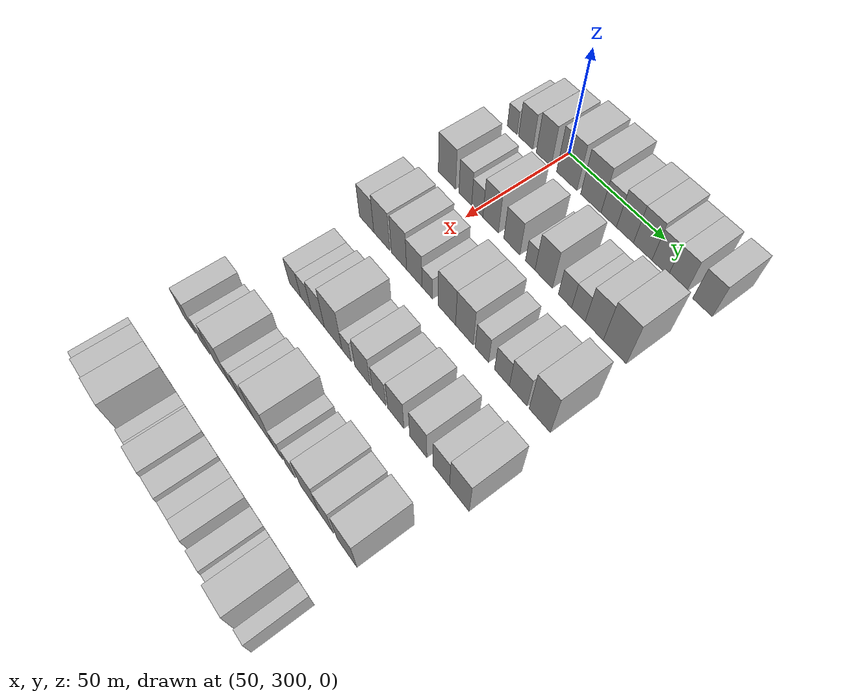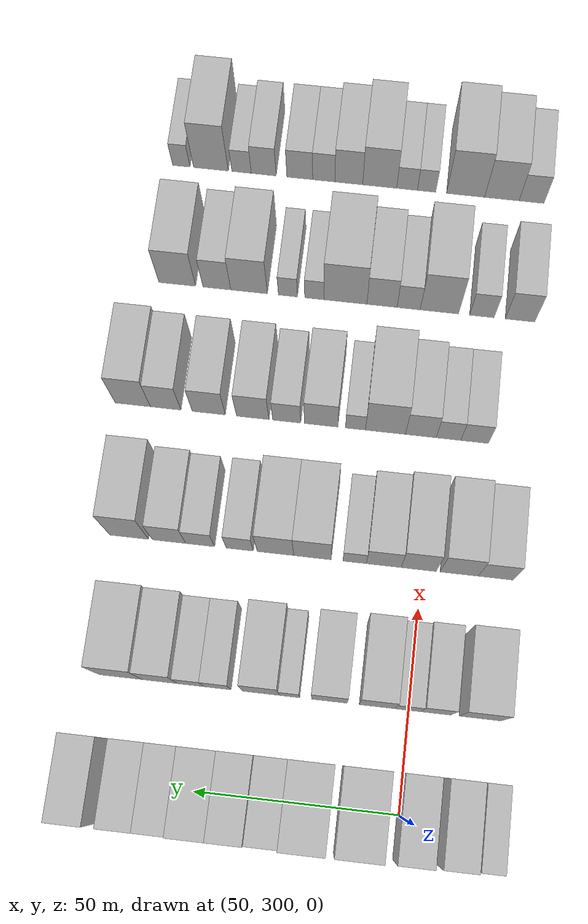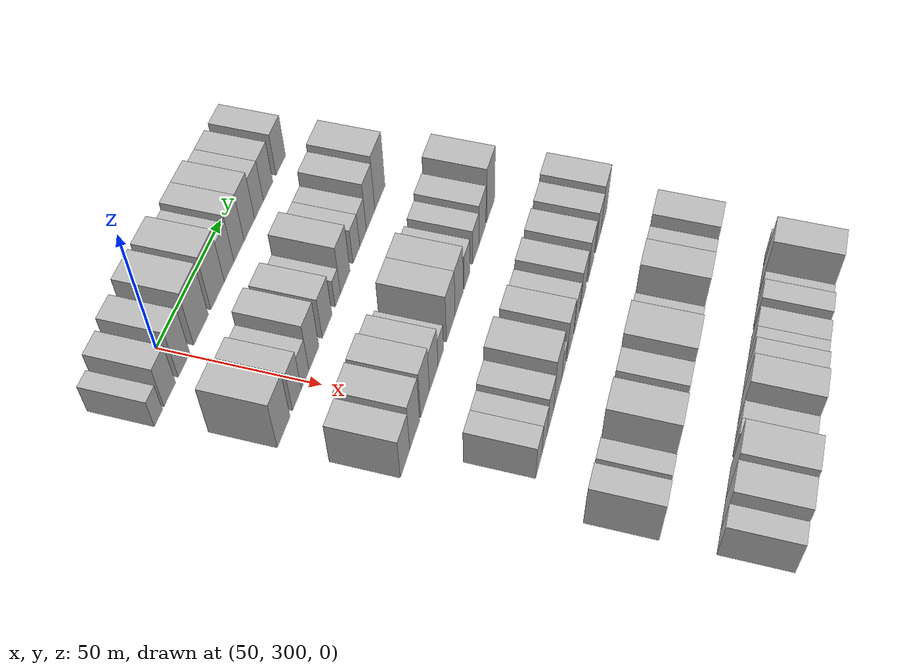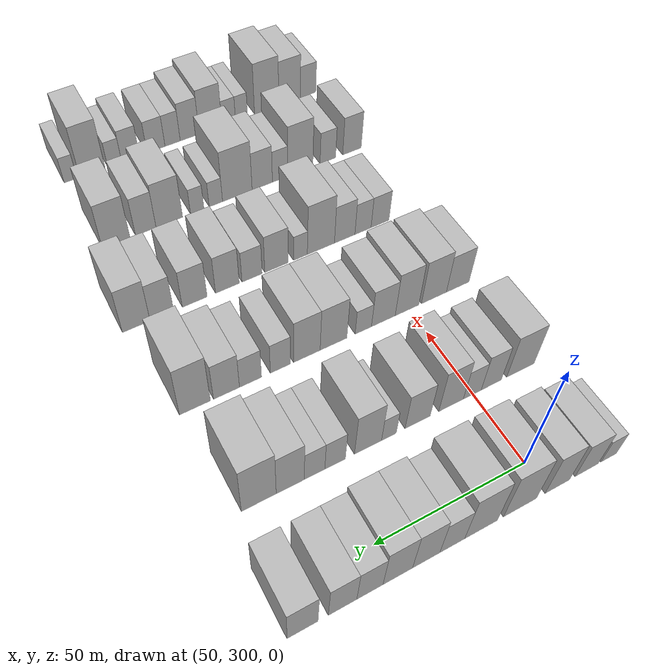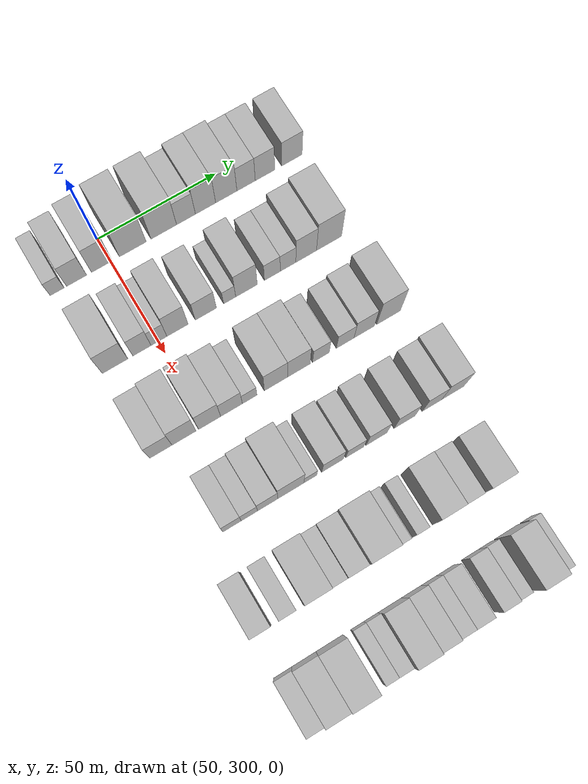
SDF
<sdf version="1.6">
 <world name="default">
  <model name="building_85">
   <static>1</static>
   <pose>50.0000 278.0711 0 0.000000 0.000000 0.000000</pose>
   <link name="link">
    <pose>0 0 6.00 0 0 0</pose>
    <collision name="collision"><geometry><box><size>20.0000 5.7061 12.0000</size></box></geometry></collision>
    <visual name="visual">
     <cast_shadows>0</cast_shadows>
     <geometry><box><size>20.0000 5.7061 12.0000</size></box></geometry>
     <material>
      <script>
       <uri>model://HANNAS_wall/materials/scripts</uri>
       <uri>model://HANNAS_wall/materials/textures</uri>
       <name>vrc/HANNAS_wall</name>
      </script>
     </material>
    </visual>
   </link>
  </model>
  <model name="building_86">
   <static>1</static>
   <pose>50.0000 286.0425 0 0.000000 0.000000 0.000000</pose>
   <link name="link">
    <pose>0 0 9.00 0 0 0</pose>
    <collision name="collision"><geometry><box><size>20.0000 8.2366 18.0000</size></box></geometry></collision>
    <visual name="visual">
     <cast_shadows>0</cast_shadows>
     <geometry><box><size>20.0000 8.2366 18.0000</size></box></geometry>
     <material>
      <script>
       <uri>model://HANNAS_wall/materials/scripts</uri>
       <uri>model://HANNAS_wall/materials/textures</uri>
       <name>vrc/HANNAS_wall</name>
      </script>
     </material>
    </visual>
   </link>
  </model>
  <model name="building_87">
   <static>1</static>
   <pose>50.0000 296.4243 0 0.000000 0.000000 0.000000</pose>
   <link name="link">
    <pose>0 0 10.50 0 0 0</pose>
    <collision name="collision"><geometry><box><size>20.0000 8.5270 21.0000</size></box></geometry></collision>
    <visual name="visual">
     <cast_shadows>0</cast_shadows>
     <geometry><box><size>20.0000 8.5270 21.0000</size></box></geometry>
     <material>
      <script>
       <uri>model://HANNAS_wall/materials/scripts</uri>
       <uri>model://HANNAS_wall/materials/textures</uri>
       <name>vrc/HANNAS_wall</name>
      </script>
     </material>
    </visual>
   </link>
  </model>
  <model name="building_88">
   <static>1</static>
   <pose>50.0000 309.2756 0 0.000000 0.000000 0.000000</pose>
   <link name="link">
    <pose>0 0 12.00 0 0 0</pose>
    <collision name="collision"><geometry><box><size>20.0000 11.1756 24.0000</size></box></geometry></collision>
    <visual name="visual">
     <cast_shadows>0</cast_shadows>
     <geometry><box><size>20.0000 11.1756 24.0000</size></box></geometry>
     <material>
      <script>
       <uri>model://HANNAS_wall/materials/scripts</uri>
       <uri>model://HANNAS_wall/materials/textures</uri>
       <name>vrc/HANNAS_wall</name>
      </script>
     </material>
    </visual>
   </link>
  </model>
  <model name="building_89">
   <static>1</static>
   <pose>50.0000 322.2462 0 0.000000 0.000000 0.000000</pose>
   <link name="link">
    <pose>0 0 12.00 0 0 0</pose>
    <collision name="collision"><geometry><box><size>20.0000 10.7656 24.0000</size></box></geometry></collision>
    <visual name="visual">
     <cast_shadows>0</cast_shadows>
     <geometry><box><size>20.0000 10.7656 24.0000</size></box></geometry>
     <material>
      <script>
       <uri>model://HANNAS_wall/materials/scripts</uri>
       <uri>model://HANNAS_wall/materials/textures</uri>
       <name>vrc/HANNAS_wall</name>
      </script>
     </material>
    </visual>
   </link>
  </model>
  <model name="building_90">
   <static>1</static>
   <pose>50.0000 331.6155 0 0.000000 0.000000 0.000000</pose>
   <link name="link">
    <pose>0 0 9.00 0 0 0</pose>
    <collision name="collision"><geometry><box><size>20.0000 7.9730 18.0000</size></box></geometry></collision>
    <visual name="visual">
     <cast_shadows>0</cast_shadows>
     <geometry><box><size>20.0000 7.9730 18.0000</size></box></geometry>
     <material>
      <script>
       <uri>model://HANNAS_wall/materials/scripts</uri>
       <uri>model://HANNAS_wall/materials/textures</uri>
       <name>vrc/HANNAS_wall</name>
      </script>
     </material>
    </visual>
   </link>
  </model>
  <model name="building_91">
   <static>1</static>
   <pose>50.0000 339.8878 0 0.000000 0.000000 0.000000</pose>
   <link name="link">
    <pose>0 0 10.50 0 0 0</pose>
    <collision name="collision"><geometry><box><size>20.0000 8.5716 21.0000</size></box></geometry></collision>
    <visual name="visual">
     <cast_shadows>0</cast_shadows>
     <geometry><box><size>20.0000 8.5716 21.0000</size></box></geometry>
     <material>
      <script>
       <uri>model://HANNAS_wall/materials/scripts</uri>
       <uri>model://HANNAS_wall/materials/textures</uri>
       <name>vrc/HANNAS_wall</name>
      </script>
     </material>
    </visual>
   </link>
  </model>
  <model name="building_92">
   <static>1</static>
   <pose>50.0000 348.7212 0 0.000000 0.000000 0.000000</pose>
   <link name="link">
    <pose>0 0 10.50 0 0 0</pose>
    <collision name="collision"><geometry><box><size>20.0000 9.0951 21.0000</size></box></geometry></collision>
    <visual name="visual">
     <cast_shadows>0</cast_shadows>
     <geometry><box><size>20.0000 9.0951 21.0000</size></box></geometry>
     <material>
      <script>
       <uri>model://HANNAS_wall/materials/scripts</uri>
       <uri>model://HANNAS_wall/materials/textures</uri>
       <name>vrc/HANNAS_wall</name>
      </script>
     </material>
    </visual>
   </link>
  </model>
  <model name="building_93">
   <static>1</static>
   <pose>50.0000 357.1975 0 0.000000 0.000000 0.000000</pose>
   <link name="link">
    <pose>0 0 9.00 0 0 0</pose>
    <collision name="collision"><geometry><box><size>20.0000 7.8576 18.0000</size></box></geometry></collision>
    <visual name="visual">
     <cast_shadows>0</cast_shadows>
     <geometry><box><size>20.0000 7.8576 18.0000</size></box></geometry>
     <material>
      <script>
       <uri>model://HANNAS_wall/materials/scripts</uri>
       <uri>model://HANNAS_wall/materials/textures</uri>
       <name>vrc/HANNAS_wall</name>
      </script>
     </material>
    </visual>
   </link>
  </model>
  <model name="building_94">
   <static>1</static>
   <pose>50.0000 365.3203 0 0.000000 0.000000 0.000000</pose>
   <link name="link">
    <pose>0 0 9.00 0 0 0</pose>
    <collision name="collision"><geometry><box><size>20.0000 8.3879 18.0000</size></box></geometry></collision>
    <visual name="visual">
     <cast_shadows>0</cast_shadows>
     <geometry><box><size>20.0000 8.3879 18.0000</size></box></geometry>
     <material>
      <script>
       <uri>model://HANNAS_wall/materials/scripts</uri>
       <uri>model://HANNAS_wall/materials/textures</uri>
       <name>vrc/HANNAS_wall</name>
      </script>
     </material>
    </visual>
   </link>
  </model>
  <model name="building_95">
   <static>1</static>
   <pose>50.0000 376.9456 0 0.000000 0.000000 0.000000</pose>
   <link name="link">
    <pose>0 0 9.00 0 0 0</pose>
    <collision name="collision"><geometry><box><size>20.0000 8.8628 18.0000</size></box></geometry></collision>
    <visual name="visual">
     <cast_shadows>0</cast_shadows>
     <geometry><box><size>20.0000 8.8628 18.0000</size></box></geometry>
     <material>
      <script>
       <uri>model://HANNAS_wall/materials/scripts</uri>
       <uri>model://HANNAS_wall/materials/textures</uri>
       <name>vrc/HANNAS_wall</name>
      </script>
     </material>
    </visual>
   </link>
  </model>
  <model name="building_210">
   <static>1</static>
   <pose>85.0000 282.5599 0 0.000000 0.000000 0.000000</pose>
   <link name="link">
    <pose>0 0 10.50 0 0 0</pose>
    <collision name="collision"><geometry><box><size>20.0000 10.3328 21.0000</size></box></geometry></collision>
    <visual name="visual">
     <cast_shadows>0</cast_shadows>
     <geometry><box><size>20.0000 10.3328 21.0000</size></box></geometry>
     <material>
      <script>
       <uri>model://HANNAS_wall/materials/scripts</uri>
       <uri>model://HANNAS_wall/materials/textures</uri>
       <name>vrc/HANNAS_wall</name>
      </script>
     </material>
    </visual>
   </link>
  </model>
  <model name="building_211">
   <static>1</static>
   <pose>85.0000 293.4377 0 0.000000 0.000000 0.000000</pose>
   <link name="link">
    <pose>0 0 9.00 0 0 0</pose>
    <collision name="collision"><geometry><box><size>20.0000 7.4226 18.0000</size></box></geometry></collision>
    <visual name="visual">
     <cast_shadows>0</cast_shadows>
     <geometry><box><size>20.0000 7.4226 18.0000</size></box></geometry>
     <material>
      <script>
       <uri>model://HANNAS_wall/materials/scripts</uri>
       <uri>model://HANNAS_wall/materials/textures</uri>
       <name>vrc/HANNAS_wall</name>
      </script>
     </material>
    </visual>
   </link>
  </model>
  <model name="building_212">
   <static>1</static>
   <pose>85.0000 300.3828 0 0.000000 0.000000 0.000000</pose>
   <link name="link">
    <pose>0 0 7.50 0 0 0</pose>
    <collision name="collision"><geometry><box><size>20.0000 6.4677 15.0000</size></box></geometry></collision>
    <visual name="visual">
     <cast_shadows>0</cast_shadows>
     <geometry><box><size>20.0000 6.4677 15.0000</size></box></geometry>
     <material>
      <script>
       <uri>model://HANNAS_wall/materials/scripts</uri>
       <uri>model://HANNAS_wall/materials/textures</uri>
       <name>vrc/HANNAS_wall</name>
      </script>
     </material>
    </visual>
   </link>
  </model>
  <model name="building_213">
   <static>1</static>
   <pose>85.0000 307.9797 0 0.000000 0.000000 0.000000</pose>
   <link name="link">
    <pose>0 0 10.50 0 0 0</pose>
    <collision name="collision"><geometry><box><size>20.0000 8.7260 21.0000</size></box></geometry></collision>
    <visual name="visual">
     <cast_shadows>0</cast_shadows>
     <geometry><box><size>20.0000 8.7260 21.0000</size></box></geometry>
     <material>
      <script>
       <uri>model://HANNAS_wall/materials/scripts</uri>
       <uri>model://HANNAS_wall/materials/textures</uri>
       <name>vrc/HANNAS_wall</name>
      </script>
     </material>
    </visual>
   </link>
  </model>
  <model name="building_214">
   <static>1</static>
   <pose>85.0000 319.7126 0 0.000000 0.000000 0.000000</pose>
   <link name="link">
    <pose>0 0 9.00 0 0 0</pose>
    <collision name="collision"><geometry><box><size>20.0000 8.7399 18.0000</size></box></geometry></collision>
    <visual name="visual">
     <cast_shadows>0</cast_shadows>
     <geometry><box><size>20.0000 8.7399 18.0000</size></box></geometry>
     <material>
      <script>
       <uri>model://HANNAS_wall/materials/scripts</uri>
       <uri>model://HANNAS_wall/materials/textures</uri>
       <name>vrc/HANNAS_wall</name>
      </script>
     </material>
    </visual>
   </link>
  </model>
  <model name="building_215">
   <static>1</static>
   <pose>85.0000 329.5873 0 0.000000 0.000000 0.000000</pose>
   <link name="link">
    <pose>0 0 6.00 0 0 0</pose>
    <collision name="collision"><geometry><box><size>20.0000 5.0094 12.0000</size></box></geometry></collision>
    <visual name="visual">
     <cast_shadows>0</cast_shadows>
     <geometry><box><size>20.0000 5.0094 12.0000</size></box></geometry>
     <material>
      <script>
       <uri>model://HANNAS_wall/materials/scripts</uri>
       <uri>model://HANNAS_wall/materials/textures</uri>
       <name>vrc/HANNAS_wall</name>
      </script>
     </material>
    </visual>
   </link>
  </model>
  <model name="building_216">
   <static>1</static>
   <pose>85.0000 336.6051 0 0.000000 0.000000 0.000000</pose>
   <link name="link">
    <pose>0 0 10.50 0 0 0</pose>
    <collision name="collision"><geometry><box><size>20.0000 9.0263 21.0000</size></box></geometry></collision>
    <visual name="visual">
     <cast_shadows>0</cast_shadows>
     <geometry><box><size>20.0000 9.0263 21.0000</size></box></geometry>
     <material>
      <script>
       <uri>model://HANNAS_wall/materials/scripts</uri>
       <uri>model://HANNAS_wall/materials/textures</uri>
       <name>vrc/HANNAS_wall</name>
      </script>
     </material>
    </visual>
   </link>
  </model>
  <model name="building_217">
   <static>1</static>
   <pose>85.0000 347.4566 0 0.000000 0.000000 0.000000</pose>
   <link name="link">
    <pose>0 0 7.50 0 0 0</pose>
    <collision name="collision"><geometry><box><size>20.0000 6.6767 15.0000</size></box></geometry></collision>
    <visual name="visual">
     <cast_shadows>0</cast_shadows>
     <geometry><box><size>20.0000 6.6767 15.0000</size></box></geometry>
     <material>
      <script>
       <uri>model://HANNAS_wall/materials/scripts</uri>
       <uri>model://HANNAS_wall/materials/textures</uri>
       <name>vrc/HANNAS_wall</name>
      </script>
     </material>
    </visual>
   </link>
  </model>
  <model name="building_218">
   <static>1</static>
   <pose>85.0000 354.0902 0 0.000000 0.000000 0.000000</pose>
   <link name="link">
    <pose>0 0 7.50 0 0 0</pose>
    <collision name="collision"><geometry><box><size>20.0000 6.5906 15.0000</size></box></geometry></collision>
    <visual name="visual">
     <cast_shadows>0</cast_shadows>
     <geometry><box><size>20.0000 6.5906 15.0000</size></box></geometry>
     <material>
      <script>
       <uri>model://HANNAS_wall/materials/scripts</uri>
       <uri>model://HANNAS_wall/materials/textures</uri>
       <name>vrc/HANNAS_wall</name>
      </script>
     </material>
    </visual>
   </link>
  </model>
  <model name="building_219">
   <static>1</static>
   <pose>85.0000 361.7844 0 0.000000 0.000000 0.000000</pose>
   <link name="link">
    <pose>0 0 10.50 0 0 0</pose>
    <collision name="collision"><geometry><box><size>20.0000 8.7977 21.0000</size></box></geometry></collision>
    <visual name="visual">
     <cast_shadows>0</cast_shadows>
     <geometry><box><size>20.0000 8.7977 21.0000</size></box></geometry>
     <material>
      <script>
       <uri>model://HANNAS_wall/materials/scripts</uri>
       <uri>model://HANNAS_wall/materials/textures</uri>
       <name>vrc/HANNAS_wall</name>
      </script>
     </material>
    </visual>
   </link>
  </model>
  <model name="building_220">
   <static>1</static>
   <pose>85.0000 371.5409 0 0.000000 0.000000 0.000000</pose>
   <link name="link">
    <pose>0 0 12.00 0 0 0</pose>
    <collision name="collision"><geometry><box><size>20.0000 10.7153 24.0000</size></box></geometry></collision>
    <visual name="visual">
     <cast_shadows>0</cast_shadows>
     <geometry><box><size>20.0000 10.7153 24.0000</size></box></geometry>
     <material>
      <script>
       <uri>model://HANNAS_wall/materials/scripts</uri>
       <uri>model://HANNAS_wall/materials/textures</uri>
       <name>vrc/HANNAS_wall</name>
      </script>
     </material>
    </visual>
   </link>
  </model>
  <model name="building_329">
   <static>1</static>
   <pose>120.0000 281.3244 0 0.000000 0.000000 0.000000</pose>
   <link name="link">
    <pose>0 0 9.00 0 0 0</pose>
    <collision name="collision"><geometry><box><size>20.0000 8.8990 18.0000</size></box></geometry></collision>
    <visual name="visual">
     <cast_shadows>0</cast_shadows>
     <geometry><box><size>20.0000 8.8990 18.0000</size></box></geometry>
     <material>
      <script>
       <uri>model://HANNAS_wall/materials/scripts</uri>
       <uri>model://HANNAS_wall/materials/textures</uri>
       <name>vrc/HANNAS_wall</name>
      </script>
     </material>
    </visual>
   </link>
  </model>
  <model name="building_330">
   <static>1</static>
   <pose>120.0000 290.5991 0 0.000000 0.000000 0.000000</pose>
   <link name="link">
    <pose>0 0 10.50 0 0 0</pose>
    <collision name="collision"><geometry><box><size>20.0000 9.6504 21.0000</size></box></geometry></collision>
    <visual name="visual">
     <cast_shadows>0</cast_shadows>
     <geometry><box><size>20.0000 9.6504 21.0000</size></box></geometry>
     <material>
      <script>
       <uri>model://HANNAS_wall/materials/scripts</uri>
       <uri>model://HANNAS_wall/materials/textures</uri>
       <name>vrc/HANNAS_wall</name>
      </script>
     </material>
    </visual>
   </link>
  </model>
  <model name="building_331">
   <static>1</static>
   <pose>120.0000 300.8941 0 0.000000 0.000000 0.000000</pose>
   <link name="link">
    <pose>0 0 10.50 0 0 0</pose>
    <collision name="collision"><geometry><box><size>20.0000 8.9396 21.0000</size></box></geometry></collision>
    <visual name="visual">
     <cast_shadows>0</cast_shadows>
     <geometry><box><size>20.0000 8.9396 21.0000</size></box></geometry>
     <material>
      <script>
       <uri>model://HANNAS_wall/materials/scripts</uri>
       <uri>model://HANNAS_wall/materials/textures</uri>
       <name>vrc/HANNAS_wall</name>
      </script>
     </material>
    </visual>
   </link>
  </model>
  <model name="building_332">
   <static>1</static>
   <pose>120.0000 309.7758 0 0.000000 0.000000 0.000000</pose>
   <link name="link">
    <pose>0 0 9.00 0 0 0</pose>
    <collision name="collision"><geometry><box><size>20.0000 8.8239 18.0000</size></box></geometry></collision>
    <visual name="visual">
     <cast_shadows>0</cast_shadows>
     <geometry><box><size>20.0000 8.8239 18.0000</size></box></geometry>
     <material>
      <script>
       <uri>model://HANNAS_wall/materials/scripts</uri>
       <uri>model://HANNAS_wall/materials/textures</uri>
       <name>vrc/HANNAS_wall</name>
      </script>
     </material>
    </visual>
   </link>
  </model>
  <model name="building_333">
   <static>1</static>
   <pose>120.0000 317.1696 0 0.000000 0.000000 0.000000</pose>
   <link name="link">
    <pose>0 0 6.00 0 0 0</pose>
    <collision name="collision"><geometry><box><size>20.0000 5.9637 12.0000</size></box></geometry></collision>
    <visual name="visual">
     <cast_shadows>0</cast_shadows>
     <geometry><box><size>20.0000 5.9637 12.0000</size></box></geometry>
     <material>
      <script>
       <uri>model://HANNAS_wall/materials/scripts</uri>
       <uri>model://HANNAS_wall/materials/textures</uri>
       <name>vrc/HANNAS_wall</name>
      </script>
     </material>
    </visual>
   </link>
  </model>
  <model name="building_334">
   <static>1</static>
   <pose>120.0000 327.9363 0 0.000000 0.000000 0.000000</pose>
   <link name="link">
    <pose>0 0 10.50 0 0 0</pose>
    <collision name="collision"><geometry><box><size>20.0000 9.5696 21.0000</size></box></geometry></collision>
    <visual name="visual">
     <cast_shadows>0</cast_shadows>
     <geometry><box><size>20.0000 9.5696 21.0000</size></box></geometry>
     <material>
      <script>
       <uri>model://HANNAS_wall/materials/scripts</uri>
       <uri>model://HANNAS_wall/materials/textures</uri>
       <name>vrc/HANNAS_wall</name>
      </script>
     </material>
    </visual>
   </link>
  </model>
  <model name="building_335">
   <static>1</static>
   <pose>120.0000 337.3871 0 0.000000 0.000000 0.000000</pose>
   <link name="link">
    <pose>0 0 10.50 0 0 0</pose>
    <collision name="collision"><geometry><box><size>20.0000 9.3320 21.0000</size></box></geometry></collision>
    <visual name="visual">
     <cast_shadows>0</cast_shadows>
     <geometry><box><size>20.0000 9.3320 21.0000</size></box></geometry>
     <material>
      <script>
       <uri>model://HANNAS_wall/materials/scripts</uri>
       <uri>model://HANNAS_wall/materials/textures</uri>
       <name>vrc/HANNAS_wall</name>
      </script>
     </material>
    </visual>
   </link>
  </model>
  <model name="building_336">
   <static>1</static>
   <pose>120.0000 346.5219 0 0.000000 0.000000 0.000000</pose>
   <link name="link">
    <pose>0 0 7.50 0 0 0</pose>
    <collision name="collision"><geometry><box><size>20.0000 6.9376 15.0000</size></box></geometry></collision>
    <visual name="visual">
     <cast_shadows>0</cast_shadows>
     <geometry><box><size>20.0000 6.9376 15.0000</size></box></geometry>
     <material>
      <script>
       <uri>model://HANNAS_wall/materials/scripts</uri>
       <uri>model://HANNAS_wall/materials/textures</uri>
       <name>vrc/HANNAS_wall</name>
      </script>
     </material>
    </visual>
   </link>
  </model>
  <model name="building_337">
   <static>1</static>
   <pose>120.0000 356.6865 0 0.000000 0.000000 0.000000</pose>
   <link name="link">
    <pose>0 0 7.50 0 0 0</pose>
    <collision name="collision"><geometry><box><size>20.0000 7.3916 15.0000</size></box></geometry></collision>
    <visual name="visual">
     <cast_shadows>0</cast_shadows>
     <geometry><box><size>20.0000 7.3916 15.0000</size></box></geometry>
     <material>
      <script>
       <uri>model://HANNAS_wall/materials/scripts</uri>
       <uri>model://HANNAS_wall/materials/textures</uri>
       <name>vrc/HANNAS_wall</name>
      </script>
     </material>
    </visual>
   </link>
  </model>
  <model name="building_338">
   <static>1</static>
   <pose>120.0000 364.6730 0 0.000000 0.000000 0.000000</pose>
   <link name="link">
    <pose>0 0 9.00 0 0 0</pose>
    <collision name="collision"><geometry><box><size>20.0000 8.5812 18.0000</size></box></geometry></collision>
    <visual name="visual">
     <cast_shadows>0</cast_shadows>
     <geometry><box><size>20.0000 8.5812 18.0000</size></box></geometry>
     <material>
      <script>
       <uri>model://HANNAS_wall/materials/scripts</uri>
       <uri>model://HANNAS_wall/materials/textures</uri>
       <name>vrc/HANNAS_wall</name>
      </script>
     </material>
    </visual>
   </link>
  </model>
  <model name="building_339">
   <static>1</static>
   <pose>120.0000 374.9668 0 0.000000 0.000000 0.000000</pose>
   <link name="link">
    <pose>0 0 12.00 0 0 0</pose>
    <collision name="collision"><geometry><box><size>20.0000 10.0065 24.0000</size></box></geometry></collision>
    <visual name="visual">
     <cast_shadows>0</cast_shadows>
     <geometry><box><size>20.0000 10.0065 24.0000</size></box></geometry>
     <material>
      <script>
       <uri>model://HANNAS_wall/materials/scripts</uri>
       <uri>model://HANNAS_wall/materials/textures</uri>
       <name>vrc/HANNAS_wall</name>
      </script>
     </material>
    </visual>
   </link>
  </model>
  <model name="building_454">
   <static>1</static>
   <pose>155.0000 289.4733 0 0.000000 0.000000 0.000000</pose>
   <link name="link">
    <pose>0 0 7.50 0 0 0</pose>
    <collision name="collision"><geometry><box><size>20.0000 7.2092 15.0000</size></box></geometry></collision>
    <visual name="visual">
     <cast_shadows>0</cast_shadows>
     <geometry><box><size>20.0000 7.2092 15.0000</size></box></geometry>
     <material>
      <script>
       <uri>model://HANNAS_wall/materials/scripts</uri>
       <uri>model://HANNAS_wall/materials/textures</uri>
       <name>vrc/HANNAS_wall</name>
      </script>
     </material>
    </visual>
   </link>
  </model>
  <model name="building_455">
   <static>1</static>
   <pose>155.0000 296.3009 0 0.000000 0.000000 0.000000</pose>
   <link name="link">
    <pose>0 0 7.50 0 0 0</pose>
    <collision name="collision"><geometry><box><size>20.0000 6.4460 15.0000</size></box></geometry></collision>
    <visual name="visual">
     <cast_shadows>0</cast_shadows>
     <geometry><box><size>20.0000 6.4460 15.0000</size></box></geometry>
     <material>
      <script>
       <uri>model://HANNAS_wall/materials/scripts</uri>
       <uri>model://HANNAS_wall/materials/textures</uri>
       <name>vrc/HANNAS_wall</name>
      </script>
     </material>
    </visual>
   </link>
  </model>
  <model name="building_456">
   <static>1</static>
   <pose>155.0000 303.5425 0 0.000000 0.000000 0.000000</pose>
   <link name="link">
    <pose>0 0 9.00 0 0 0</pose>
    <collision name="collision"><geometry><box><size>20.0000 8.0371 18.0000</size></box></geometry></collision>
    <visual name="visual">
     <cast_shadows>0</cast_shadows>
     <geometry><box><size>20.0000 8.0371 18.0000</size></box></geometry>
     <material>
      <script>
       <uri>model://HANNAS_wall/materials/scripts</uri>
       <uri>model://HANNAS_wall/materials/textures</uri>
       <name>vrc/HANNAS_wall</name>
      </script>
     </material>
    </visual>
   </link>
  </model>
  <model name="building_457">
   <static>1</static>
   <pose>155.0000 312.8030 0 0.000000 0.000000 0.000000</pose>
   <link name="link">
    <pose>0 0 12.00 0 0 0</pose>
    <collision name="collision"><geometry><box><size>20.0000 10.4840 24.0000</size></box></geometry></collision>
    <visual name="visual">
     <cast_shadows>0</cast_shadows>
     <geometry><box><size>20.0000 10.4840 24.0000</size></box></geometry>
     <material>
      <script>
       <uri>model://HANNAS_wall/materials/scripts</uri>
       <uri>model://HANNAS_wall/materials/textures</uri>
       <name>vrc/HANNAS_wall</name>
      </script>
     </material>
    </visual>
   </link>
  </model>
  <model name="building_458">
   <static>1</static>
   <pose>155.0000 320.6640 0 0.000000 0.000000 0.000000</pose>
   <link name="link">
    <pose>0 0 6.00 0 0 0</pose>
    <collision name="collision"><geometry><box><size>20.0000 5.2379 12.0000</size></box></geometry></collision>
    <visual name="visual">
     <cast_shadows>0</cast_shadows>
     <geometry><box><size>20.0000 5.2379 12.0000</size></box></geometry>
     <material>
      <script>
       <uri>model://HANNAS_wall/materials/scripts</uri>
       <uri>model://HANNAS_wall/materials/textures</uri>
       <name>vrc/HANNAS_wall</name>
      </script>
     </material>
    </visual>
   </link>
  </model>
  <model name="building_459">
   <static>1</static>
   <pose>155.0000 329.6633 0 0.000000 0.000000 0.000000</pose>
   <link name="link">
    <pose>0 0 9.00 0 0 0</pose>
    <collision name="collision"><geometry><box><size>20.0000 8.7607 18.0000</size></box></geometry></collision>
    <visual name="visual">
     <cast_shadows>0</cast_shadows>
     <geometry><box><size>20.0000 8.7607 18.0000</size></box></geometry>
     <material>
      <script>
       <uri>model://HANNAS_wall/materials/scripts</uri>
       <uri>model://HANNAS_wall/materials/textures</uri>
       <name>vrc/HANNAS_wall</name>
      </script>
     </material>
    </visual>
   </link>
  </model>
  <model name="building_460">
   <static>1</static>
   <pose>155.0000 338.7254 0 0.000000 0.000000 0.000000</pose>
   <link name="link">
    <pose>0 0 7.50 0 0 0</pose>
    <collision name="collision"><geometry><box><size>20.0000 7.3633 15.0000</size></box></geometry></collision>
    <visual name="visual">
     <cast_shadows>0</cast_shadows>
     <geometry><box><size>20.0000 7.3633 15.0000</size></box></geometry>
     <material>
      <script>
       <uri>model://HANNAS_wall/materials/scripts</uri>
       <uri>model://HANNAS_wall/materials/textures</uri>
       <name>vrc/HANNAS_wall</name>
      </script>
     </material>
    </visual>
   </link>
  </model>
  <model name="building_461">
   <static>1</static>
   <pose>155.0000 347.6815 0 0.000000 0.000000 0.000000</pose>
   <link name="link">
    <pose>0 0 9.00 0 0 0</pose>
    <collision name="collision"><geometry><box><size>20.0000 8.5490 18.0000</size></box></geometry></collision>
    <visual name="visual">
     <cast_shadows>0</cast_shadows>
     <geometry><box><size>20.0000 8.5490 18.0000</size></box></geometry>
     <material>
      <script>
       <uri>model://HANNAS_wall/materials/scripts</uri>
       <uri>model://HANNAS_wall/materials/textures</uri>
       <name>vrc/HANNAS_wall</name>
      </script>
     </material>
    </visual>
   </link>
  </model>
  <model name="building_462">
   <static>1</static>
   <pose>155.0000 359.3171 0 0.000000 0.000000 0.000000</pose>
   <link name="link">
    <pose>0 0 9.00 0 0 0</pose>
    <collision name="collision"><geometry><box><size>20.0000 8.7221 18.0000</size></box></geometry></collision>
    <visual name="visual">
     <cast_shadows>0</cast_shadows>
     <geometry><box><size>20.0000 8.7221 18.0000</size></box></geometry>
     <material>
      <script>
       <uri>model://HANNAS_wall/materials/scripts</uri>
       <uri>model://HANNAS_wall/materials/textures</uri>
       <name>vrc/HANNAS_wall</name>
      </script>
     </material>
    </visual>
   </link>
  </model>
  <model name="building_463">
   <static>1</static>
   <pose>155.0000 370.7301 0 0.000000 0.000000 0.000000</pose>
   <link name="link">
    <pose>0 0 9.00 0 0 0</pose>
    <collision name="collision"><geometry><box><size>20.0000 8.1041 18.0000</size></box></geometry></collision>
    <visual name="visual">
     <cast_shadows>0</cast_shadows>
     <geometry><box><size>20.0000 8.1041 18.0000</size></box></geometry>
     <material>
      <script>
       <uri>model://HANNAS_wall/materials/scripts</uri>
       <uri>model://HANNAS_wall/materials/textures</uri>
       <name>vrc/HANNAS_wall</name>
      </script>
     </material>
    </visual>
   </link>
  </model>
  <model name="building_464">
   <static>1</static>
   <pose>155.0000 379.4562 0 0.000000 0.000000 0.000000</pose>
   <link name="link">
    <pose>0 0 10.50 0 0 0</pose>
    <collision name="collision"><geometry><box><size>20.0000 9.3481 21.0000</size></box></geometry></collision>
    <visual name="visual">
     <cast_shadows>0</cast_shadows>
     <geometry><box><size>20.0000 9.3481 21.0000</size></box></geometry>
     <material>
      <script>
       <uri>model://HANNAS_wall/materials/scripts</uri>
       <uri>model://HANNAS_wall/materials/textures</uri>
       <name>vrc/HANNAS_wall</name>
      </script>
     </material>
    </visual>
   </link>
  </model>
  <model name="building_580">
   <static>1</static>
   <pose>190.0000 280.0616 0 0.000000 0.000000 0.000000</pose>
   <link name="link">
    <pose>0 0 9.00 0 0 0</pose>
    <collision name="collision"><geometry><box><size>20.0000 7.8814 18.0000</size></box></geometry></collision>
    <visual name="visual">
     <cast_shadows>0</cast_shadows>
     <geometry><box><size>20.0000 7.8814 18.0000</size></box></geometry>
     <material>
      <script>
       <uri>model://HANNAS_wall/materials/scripts</uri>
       <uri>model://HANNAS_wall/materials/textures</uri>
       <name>vrc/HANNAS_wall</name>
      </script>
     </material>
    </visual>
   </link>
  </model>
  <model name="building_581">
   <static>1</static>
   <pose>190.0000 290.2873 0 0.000000 0.000000 0.000000</pose>
   <link name="link">
    <pose>0 0 7.50 0 0 0</pose>
    <collision name="collision"><geometry><box><size>20.0000 6.5701 15.0000</size></box></geometry></collision>
    <visual name="visual">
     <cast_shadows>0</cast_shadows>
     <geometry><box><size>20.0000 6.5701 15.0000</size></box></geometry>
     <material>
      <script>
       <uri>model://HANNAS_wall/materials/scripts</uri>
       <uri>model://HANNAS_wall/materials/textures</uri>
       <name>vrc/HANNAS_wall</name>
      </script>
     </material>
    </visual>
   </link>
  </model>
  <model name="building_582">
   <static>1</static>
   <pose>190.0000 301.7265 0 0.000000 0.000000 0.000000</pose>
   <link name="link">
    <pose>0 0 12.00 0 0 0</pose>
    <collision name="collision"><geometry><box><size>20.0000 10.3083 24.0000</size></box></geometry></collision>
    <visual name="visual">
     <cast_shadows>0</cast_shadows>
     <geometry><box><size>20.0000 10.3083 24.0000</size></box></geometry>
     <material>
      <script>
       <uri>model://HANNAS_wall/materials/scripts</uri>
       <uri>model://HANNAS_wall/materials/textures</uri>
       <name>vrc/HANNAS_wall</name>
      </script>
     </material>
    </visual>
   </link>
  </model>
  <model name="building_583">
   <static>1</static>
   <pose>190.0000 310.0082 0 0.000000 0.000000 0.000000</pose>
   <link name="link">
    <pose>0 0 7.50 0 0 0</pose>
    <collision name="collision"><geometry><box><size>20.0000 6.2551 15.0000</size></box></geometry></collision>
    <visual name="visual">
     <cast_shadows>0</cast_shadows>
     <geometry><box><size>20.0000 6.2551 15.0000</size></box></geometry>
     <material>
      <script>
       <uri>model://HANNAS_wall/materials/scripts</uri>
       <uri>model://HANNAS_wall/materials/textures</uri>
       <name>vrc/HANNAS_wall</name>
      </script>
     </material>
    </visual>
   </link>
  </model>
  <model name="building_584">
   <static>1</static>
   <pose>190.0000 317.1947 0 0.000000 0.000000 0.000000</pose>
   <link name="link">
    <pose>0 0 9.00 0 0 0</pose>
    <collision name="collision"><geometry><box><size>20.0000 8.1179 18.0000</size></box></geometry></collision>
    <visual name="visual">
     <cast_shadows>0</cast_shadows>
     <geometry><box><size>20.0000 8.1179 18.0000</size></box></geometry>
     <material>
      <script>
       <uri>model://HANNAS_wall/materials/scripts</uri>
       <uri>model://HANNAS_wall/materials/textures</uri>
       <name>vrc/HANNAS_wall</name>
      </script>
     </material>
    </visual>
   </link>
  </model>
  <model name="building_585">
   <static>1</static>
   <pose>190.0000 327.0686 0 0.000000 0.000000 0.000000</pose>
   <link name="link">
    <pose>0 0 12.00 0 0 0</pose>
    <collision name="collision"><geometry><box><size>20.0000 11.6298 24.0000</size></box></geometry></collision>
    <visual name="visual">
     <cast_shadows>0</cast_shadows>
     <geometry><box><size>20.0000 11.6298 24.0000</size></box></geometry>
     <material>
      <script>
       <uri>model://HANNAS_wall/materials/scripts</uri>
       <uri>model://HANNAS_wall/materials/textures</uri>
       <name>vrc/HANNAS_wall</name>
      </script>
     </material>
    </visual>
   </link>
  </model>
  <model name="building_586">
   <static>1</static>
   <pose>190.0000 335.4713 0 0.000000 0.000000 0.000000</pose>
   <link name="link">
    <pose>0 0 6.00 0 0 0</pose>
    <collision name="collision"><geometry><box><size>20.0000 5.1756 12.0000</size></box></geometry></collision>
    <visual name="visual">
     <cast_shadows>0</cast_shadows>
     <geometry><box><size>20.0000 5.1756 12.0000</size></box></geometry>
     <material>
      <script>
       <uri>model://HANNAS_wall/materials/scripts</uri>
       <uri>model://HANNAS_wall/materials/textures</uri>
       <name>vrc/HANNAS_wall</name>
      </script>
     </material>
    </visual>
   </link>
  </model>
  <model name="building_587">
   <static>1</static>
   <pose>190.0000 342.6299 0 0.000000 0.000000 0.000000</pose>
   <link name="link">
    <pose>0 0 6.00 0 0 0</pose>
    <collision name="collision"><geometry><box><size>20.0000 5.1417 12.0000</size></box></geometry></collision>
    <visual name="visual">
     <cast_shadows>0</cast_shadows>
     <geometry><box><size>20.0000 5.1417 12.0000</size></box></geometry>
     <material>
      <script>
       <uri>model://HANNAS_wall/materials/scripts</uri>
       <uri>model://HANNAS_wall/materials/textures</uri>
       <name>vrc/HANNAS_wall</name>
      </script>
     </material>
    </visual>
   </link>
  </model>
  <model name="building_588">
   <static>1</static>
   <pose>190.0000 353.1737 0 0.000000 0.000000 0.000000</pose>
   <link name="link">
    <pose>0 0 10.50 0 0 0</pose>
    <collision name="collision"><geometry><box><size>20.0000 9.9460 21.0000</size></box></geometry></collision>
    <visual name="visual">
     <cast_shadows>0</cast_shadows>
     <geometry><box><size>20.0000 9.9460 21.0000</size></box></geometry>
     <material>
      <script>
       <uri>model://HANNAS_wall/materials/scripts</uri>
       <uri>model://HANNAS_wall/materials/textures</uri>
       <name>vrc/HANNAS_wall</name>
      </script>
     </material>
    </visual>
   </link>
  </model>
  <model name="building_589">
   <static>1</static>
   <pose>190.0000 361.9295 0 0.000000 0.000000 0.000000</pose>
   <link name="link">
    <pose>0 0 9.00 0 0 0</pose>
    <collision name="collision"><geometry><box><size>20.0000 7.5655 18.0000</size></box></geometry></collision>
    <visual name="visual">
     <cast_shadows>0</cast_shadows>
     <geometry><box><size>20.0000 7.5655 18.0000</size></box></geometry>
     <material>
      <script>
       <uri>model://HANNAS_wall/materials/scripts</uri>
       <uri>model://HANNAS_wall/materials/textures</uri>
       <name>vrc/HANNAS_wall</name>
      </script>
     </material>
    </visual>
   </link>
  </model>
  <model name="building_590">
   <static>1</static>
   <pose>190.0000 372.7111 0 0.000000 0.000000 0.000000</pose>
   <link name="link">
    <pose>0 0 10.50 0 0 0</pose>
    <collision name="collision"><geometry><box><size>20.0000 9.9977 21.0000</size></box></geometry></collision>
    <visual name="visual">
     <cast_shadows>0</cast_shadows>
     <geometry><box><size>20.0000 9.9977 21.0000</size></box></geometry>
     <material>
      <script>
       <uri>model://HANNAS_wall/materials/scripts</uri>
       <uri>model://HANNAS_wall/materials/textures</uri>
       <name>vrc/HANNAS_wall</name>
      </script>
     </material>
    </visual>
   </link>
  </model>
  <model name="building_712">
   <static>1</static>
   <pose>225.0000 279.3235 0 0.000000 0.000000 0.000000</pose>
   <link name="link">
    <pose>0 0 7.50 0 0 0</pose>
    <collision name="collision"><geometry><box><size>20.0000 6.8702 15.0000</size></box></geometry></collision>
    <visual name="visual">
     <cast_shadows>0</cast_shadows>
     <geometry><box><size>20.0000 6.8702 15.0000</size></box></geometry>
     <material>
      <script>
       <uri>model://HANNAS_wall/materials/scripts</uri>
       <uri>model://HANNAS_wall/materials/textures</uri>
       <name>vrc/HANNAS_wall</name>
      </script>
     </material>
    </visual>
   </link>
  </model>
  <model name="building_713">
   <static>1</static>
   <pose>225.0000 287.5062 0 0.000000 0.000000 0.000000</pose>
   <link name="link">
    <pose>0 0 10.50 0 0 0</pose>
    <collision name="collision"><geometry><box><size>20.0000 9.4951 21.0000</size></box></geometry></collision>
    <visual name="visual">
     <cast_shadows>0</cast_shadows>
     <geometry><box><size>20.0000 9.4951 21.0000</size></box></geometry>
     <material>
      <script>
       <uri>model://HANNAS_wall/materials/scripts</uri>
       <uri>model://HANNAS_wall/materials/textures</uri>
       <name>vrc/HANNAS_wall</name>
      </script>
     </material>
    </visual>
   </link>
  </model>
  <model name="building_714">
   <static>1</static>
   <pose>225.0000 297.5201 0 0.000000 0.000000 0.000000</pose>
   <link name="link">
    <pose>0 0 12.00 0 0 0</pose>
    <collision name="collision"><geometry><box><size>20.0000 10.5328 24.0000</size></box></geometry></collision>
    <visual name="visual">
     <cast_shadows>0</cast_shadows>
     <geometry><box><size>20.0000 10.5328 24.0000</size></box></geometry>
     <material>
      <script>
       <uri>model://HANNAS_wall/materials/scripts</uri>
       <uri>model://HANNAS_wall/materials/textures</uri>
       <name>vrc/HANNAS_wall</name>
      </script>
     </material>
    </visual>
   </link>
  </model>
  <model name="building_715">
   <static>1</static>
   <pose>225.0000 308.3345 0 0.000000 0.000000 0.000000</pose>
   <link name="link">
    <pose>0 0 6.00 0 0 0</pose>
    <collision name="collision"><geometry><box><size>20.0000 5.0959 12.0000</size></box></geometry></collision>
    <visual name="visual">
     <cast_shadows>0</cast_shadows>
     <geometry><box><size>20.0000 5.0959 12.0000</size></box></geometry>
     <material>
      <script>
       <uri>model://HANNAS_wall/materials/scripts</uri>
       <uri>model://HANNAS_wall/materials/textures</uri>
       <name>vrc/HANNAS_wall</name>
      </script>
     </material>
    </visual>
   </link>
  </model>
  <model name="building_716">
   <static>1</static>
   <pose>225.0000 313.7428 0 0.000000 0.000000 0.000000</pose>
   <link name="link">
    <pose>0 0 6.00 0 0 0</pose>
    <collision name="collision"><geometry><box><size>20.0000 5.7206 12.0000</size></box></geometry></collision>
    <visual name="visual">
     <cast_shadows>0</cast_shadows>
     <geometry><box><size>20.0000 5.7206 12.0000</size></box></geometry>
     <material>
      <script>
       <uri>model://HANNAS_wall/materials/scripts</uri>
       <uri>model://HANNAS_wall/materials/textures</uri>
       <name>vrc/HANNAS_wall</name>
      </script>
     </material>
    </visual>
   </link>
  </model>
  <model name="building_717">
   <static>1</static>
   <pose>225.0000 321.3160 0 0.000000 0.000000 0.000000</pose>
   <link name="link">
    <pose>0 0 10.50 0 0 0</pose>
    <collision name="collision"><geometry><box><size>20.0000 9.4258 21.0000</size></box></geometry></collision>
    <visual name="visual">
     <cast_shadows>0</cast_shadows>
     <geometry><box><size>20.0000 9.4258 21.0000</size></box></geometry>
     <material>
      <script>
       <uri>model://HANNAS_wall/materials/scripts</uri>
       <uri>model://HANNAS_wall/materials/textures</uri>
       <name>vrc/HANNAS_wall</name>
      </script>
     </material>
    </visual>
   </link>
  </model>
  <model name="building_718">
   <static>1</static>
   <pose>225.0000 329.9011 0 0.000000 0.000000 0.000000</pose>
   <link name="link">
    <pose>0 0 9.00 0 0 0</pose>
    <collision name="collision"><geometry><box><size>20.0000 7.7444 18.0000</size></box></geometry></collision>
    <visual name="visual">
     <cast_shadows>0</cast_shadows>
     <geometry><box><size>20.0000 7.7444 18.0000</size></box></geometry>
     <material>
      <script>
       <uri>model://HANNAS_wall/materials/scripts</uri>
       <uri>model://HANNAS_wall/materials/textures</uri>
       <name>vrc/HANNAS_wall</name>
      </script>
     </material>
    </visual>
   </link>
  </model>
  <model name="building_719">
   <static>1</static>
   <pose>225.0000 336.8537 0 0.000000 0.000000 0.000000</pose>
   <link name="link">
    <pose>0 0 7.50 0 0 0</pose>
    <collision name="collision"><geometry><box><size>20.0000 6.1607 15.0000</size></box></geometry></collision>
    <visual name="visual">
     <cast_shadows>0</cast_shadows>
     <geometry><box><size>20.0000 6.1607 15.0000</size></box></geometry>
     <material>
      <script>
       <uri>model://HANNAS_wall/materials/scripts</uri>
       <uri>model://HANNAS_wall/materials/textures</uri>
       <name>vrc/HANNAS_wall</name>
      </script>
     </material>
    </visual>
   </link>
  </model>
  <model name="building_720">
   <static>1</static>
   <pose>225.0000 343.5324 0 0.000000 0.000000 0.000000</pose>
   <link name="link">
    <pose>0 0 7.50 0 0 0</pose>
    <collision name="collision"><geometry><box><size>20.0000 7.1967 15.0000</size></box></geometry></collision>
    <visual name="visual">
     <cast_shadows>0</cast_shadows>
     <geometry><box><size>20.0000 7.1967 15.0000</size></box></geometry>
     <material>
      <script>
       <uri>model://HANNAS_wall/materials/scripts</uri>
       <uri>model://HANNAS_wall/materials/textures</uri>
       <name>vrc/HANNAS_wall</name>
      </script>
     </material>
    </visual>
   </link>
  </model>
  <model name="building_721">
   <static>1</static>
   <pose>225.0000 353.6036 0 0.000000 0.000000 0.000000</pose>
   <link name="link">
    <pose>0 0 7.50 0 0 0</pose>
    <collision name="collision"><geometry><box><size>20.0000 6.9458 15.0000</size></box></geometry></collision>
    <visual name="visual">
     <cast_shadows>0</cast_shadows>
     <geometry><box><size>20.0000 6.9458 15.0000</size></box></geometry>
     <material>
      <script>
       <uri>model://HANNAS_wall/materials/scripts</uri>
       <uri>model://HANNAS_wall/materials/textures</uri>
       <name>vrc/HANNAS_wall</name>
      </script>
     </material>
    </visual>
   </link>
  </model>
  <model name="building_722">
   <static>1</static>
   <pose>225.0000 359.7856 0 0.000000 0.000000 0.000000</pose>
   <link name="link">
    <pose>0 0 6.00 0 0 0</pose>
    <collision name="collision"><geometry><box><size>20.0000 5.4182 12.0000</size></box></geometry></collision>
    <visual name="visual">
     <cast_shadows>0</cast_shadows>
     <geometry><box><size>20.0000 5.4182 12.0000</size></box></geometry>
     <material>
      <script>
       <uri>model://HANNAS_wall/materials/scripts</uri>
       <uri>model://HANNAS_wall/materials/textures</uri>
       <name>vrc/HANNAS_wall</name>
      </script>
     </material>
    </visual>
   </link>
  </model>
  <model name="building_723">
   <static>1</static>
   <pose>225.0000 368.3499 0 0.000000 0.000000 0.000000</pose>
   <link name="link">
    <pose>0 0 12.00 0 0 0</pose>
    <collision name="collision"><geometry><box><size>20.0000 9.7103 24.0000</size></box></geometry></collision>
    <visual name="visual">
     <cast_shadows>0</cast_shadows>
     <geometry><box><size>20.0000 9.7103 24.0000</size></box></geometry>
     <material>
      <script>
       <uri>model://HANNAS_wall/materials/scripts</uri>
       <uri>model://HANNAS_wall/materials/textures</uri>
       <name>vrc/HANNAS_wall</name>
      </script>
     </material>
    </visual>
   </link>
  </model>
  <model name="building_724">
   <static>1</static>
   <pose>225.0000 376.6268 0 0.000000 0.000000 0.000000</pose>
   <link name="link">
    <pose>0 0 6.00 0 0 0</pose>
    <collision name="collision"><geometry><box><size>20.0000 4.8434 12.0000</size></box></geometry></collision>
    <visual name="visual">
     <cast_shadows>0</cast_shadows>
     <geometry><box><size>20.0000 4.8434 12.0000</size></box></geometry>
     <material>
      <script>
       <uri>model://HANNAS_wall/materials/scripts</uri>
       <uri>model://HANNAS_wall/materials/textures</uri>
       <name>vrc/HANNAS_wall</name>
      </script>
     </material>
    </visual>
   </link>
  </model>
 </world>
</sdf>
